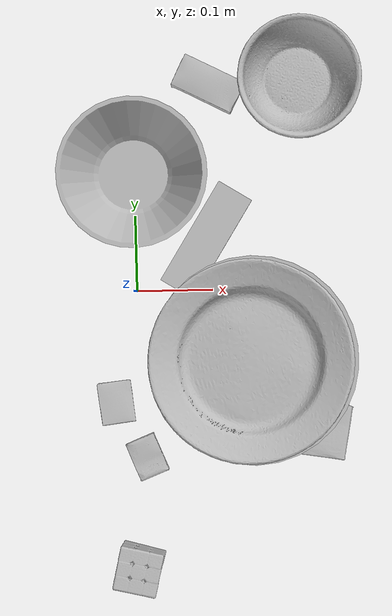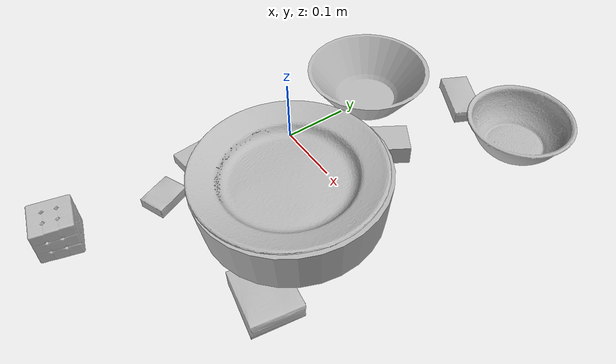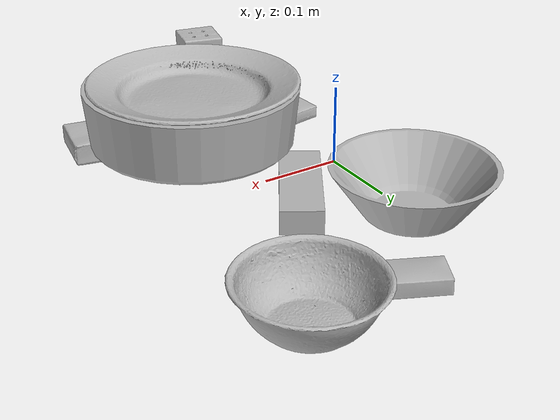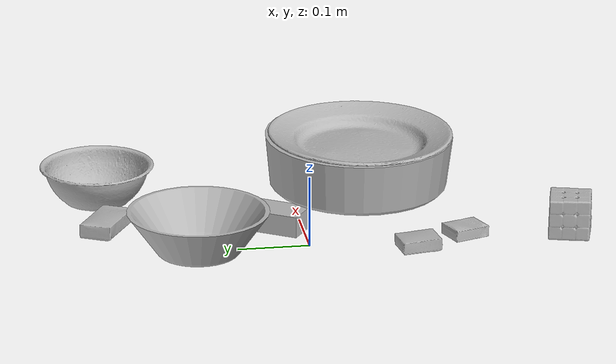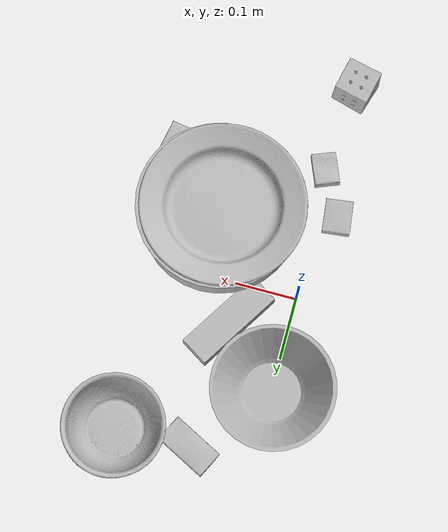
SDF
<sdf version="1.4">
  <world name="default">
    <light name="light1" type="point">
      <pose>0 0 1 0 0 0</pose>
      <diffuse>3 3 3 1</diffuse>
      <specular>3 3 3 1</specular>
    </light>
    <light name="light2" type="point">
      <pose>0 0.5 2 0 0 0</pose>
      <diffuse>1 1 1 1</diffuse>
      <specular>1 1 1 1</specular>
    </light>
    <light name="light3" type="point">
      <pose>0 0.5 2 0 0 0</pose>
      <diffuse>3 3 3 1</diffuse>
      <specular>3 3 3 1</specular>
    </light>
    <scene>
      <ambient>0.7 0.7 0.7</ambient>
    </scene>
    <model name="box1">
      <link name="link_box1">
        <collision name="default">
          <geometry>
            <mesh>
              <uri>model://sugar_box/collision_meshes/collision.obj</uri>
              <scale>0.5 0.5 0.5</scale>
            </mesh>
          </geometry>
          <surface>
            <friction>
              <ode>
                <mu>0.5</mu>
                <mu2>0.5</mu2>
              </ode>
            </friction>
          <contact>
        <ode>
            <max_vel>0</max_vel>
            <min_depth>0.0001</min_depth>
            <kp>1e8</kp>
        </ode>
    </contact></surface>
        </collision>
        <visual name="default">
          <geometry>
            <mesh>
              <uri>model://sugar_box/visual_meshes/visual.dae</uri>
              <scale>0.5 0.5 0.5</scale>
            </mesh>
          </geometry>
        </visual>
        <inertial>
          <mass>0.05968111753463745</mass>
          <pose>0.0005171863595023751 1.924554817378521e-05 -0.00018182402709499002 -0.00040462627153530444 0.0010506635220302928 0.002615378323275012</pose>
          <inertia>
            <ixx>1.2431535e-05</ixx>
            <iyy>4.0181283e-05</iyy>
            <izz>4.8101785e-05</izz>
            <ixy>0</ixy>
            <ixz>0</ixz>
            <iyz>0</iyz>
          </inertia>
        </inertial>
      </link>
      <pose>0.10023710131645203 0.27075478434562683 0.01139929797500372 0.0007754257917177019 -0.023433279377921636 2.6705569909273614</pose>
    </model>
    <model name="box11">
      <link name="link_box11">
        <collision name="default">
          <geometry>
            <mesh>
              <uri>model://cracker_box/collision_meshes/collision.obj</uri>
              <scale>0.25 0.25 0.25</scale>
            </mesh>
          </geometry>
          <surface>
            <friction>
              <ode>
                <mu>0.5</mu>
                <mu2>0.5</mu2>
              </ode>
            </friction>
          <contact>
        <ode>
            <max_vel>0</max_vel>
            <min_depth>0.0001</min_depth>
            <kp>1e8</kp>
        </ode>
    </contact></surface>
        </collision>
        <visual name="default">
          <geometry>
            <mesh>
              <uri>model://cracker_box/visual_meshes/visual.dae</uri>
              <scale>0.25 0.25 0.25</scale>
            </mesh>
          </geometry>
        </visual>
        <inertial>
          <mass>0.04741516709327698</mass>
          <pose>0.0002366035187151283 6.358561950037256e-05 -0.0004257383698131889 -0.00031620780351981393 -0.01110649053153066 0.0025467950031323855</pose>
          <inertia>
            <ixx>7.537689e-06</ixx>
            <iyy>1.2446206e-05</iyy>
            <izz>1.7761875e-05</izz>
            <ixy>0</ixy>
            <ixz>0</ixz>
            <iyz>0</iyz>
          </inertia>
        </inertial>
      </link>
      <pose>0.008268460631370544 -0.21834540367126465 0.009120449423789978 -0.011787978072303834 -0.0073671384364641405 1.9520299605262148</pose>
    </model>
    <model name="box2">
      <link name="link_box2">
        <collision name="default">
          <geometry>
            <mesh>
              <uri>model://jenga/collision_meshes/collision.obj</uri>
              <scale>1.0 1.0 1.0</scale>
            </mesh>
          </geometry>
          <surface>
            <friction>
              <ode>
                <mu>0.5</mu>
                <mu2>0.5</mu2>
              </ode>
            </friction>
          <contact>
        <ode>
            <max_vel>0</max_vel>
            <min_depth>0.0001</min_depth>
            <kp>1e8</kp>
        </ode>
    </contact></surface>
        </collision>
        <visual name="default">
          <geometry>
            <mesh>
              <uri>model://jenga/visual_meshes/visual.dae</uri>
              <scale>1.0 1.0 1.0</scale>
            </mesh>
          </geometry>
        </visual>
        <inertial>
          <mass>0.17569443583488464</mass>
          <pose>-2.502855807051674e-07 -0.00010250010382151231 -4.0923401684267446e-05 0.0 -7.342153480750062e-07 0.0</pose>
          <inertia>
            <ixx>4.8618913e-05</ixx>
            <iyy>0.00032944046</iyy>
            <izz>0.0003517057</izz>
            <ixy>0</ixy>
            <ixz>0</ixz>
            <iyz>0</iyz>
          </inertia>
        </inertial>
      </link>
      <pose>0.09284123033285141 0.06482808291912079 0.015020977705717087 -0.000646969003845926 4.834223334014954e-05 -2.1290560235196545</pose>
    </model>
    <model name="box21">
      <link name="link_box21">
        <collision name="default">
          <geometry>
            <mesh>
              <uri>model://rubiks_cube/collision_meshes/collision.obj</uri>
              <scale>1.0 1.0 1.0</scale>
            </mesh>
          </geometry>
          <surface>
            <friction>
              <ode>
                <mu>0.5</mu>
                <mu2>0.5</mu2>
              </ode>
            </friction>
          <contact>
        <ode>
            <max_vel>0</max_vel>
            <min_depth>0.0001</min_depth>
            <kp>1e8</kp>
        </ode>
    </contact></surface>
        </collision>
        <visual name="default">
          <geometry>
            <mesh>
              <uri>model://rubiks_cube/visual_meshes/visual.dae</uri>
              <scale>1.0 1.0 1.0</scale>
            </mesh>
          </geometry>
        </visual>
        <inertial>
          <mass>0.16427944600582123</mass>
          <pose>2.6721041649580002e-05 5.2569666877388954e-05 -7.2643156272533815e-06 -0.05467299197426534 -0.0981400693449792 -0.034455479534688374</pose>
          <inertia>
            <ixx>9.0775415e-05</ixx>
            <iyy>9.0352085e-05</iyy>
            <izz>9.152764e-05</izz>
            <ixy>0</ixy>
            <ixz>0</ixz>
            <iyz>0</iyz>
          </inertia>
        </inertial>
      </link>
      <pose>-0.005741917993873358 -0.36317262053489685 0.028678949922323227 -4.851249471580872e-06 -1.2259310738441881e-06 -1.8128700967925828</pose>
    </model>
    <model name="box3">
      <link name="link_box3">
        <collision name="default">
          <geometry>
            <mesh>
              <uri>model://gelatin_box/collision_meshes/collision.obj</uri>
              <scale>1.0 1.0 1.0</scale>
            </mesh>
          </geometry>
          <surface>
            <friction>
              <ode>
                <mu>0.5</mu>
                <mu2>0.5</mu2>
              </ode>
            </friction>
          <contact>
        <ode>
            <max_vel>0</max_vel>
            <min_depth>0.0001</min_depth>
            <kp>1e8</kp>
        </ode>
    </contact></surface>
        </collision>
        <visual name="default">
          <geometry>
            <mesh>
              <uri>model://gelatin_box/visual_meshes/visual.dae</uri>
              <scale>1.0 1.0 1.0</scale>
            </mesh>
          </geometry>
        </visual>
        <inertial>
          <mass>0.21197354793548584</mass>
          <pose>0.0004319618456065655 0.00011156872642459348 -0.0003640321083366871 -0.0010503719594585892 -0.004755818227500045 0.016440553882781303</pose>
          <inertia>
            <ixx>0.00014963602</ixx>
            <iyy>0.00010688423</iyy>
            <izz>0.00022777937</izz>
            <ixy>0</ixy>
            <ixz>0</ixz>
            <iyz>0</iyz>
          </inertia>
        </inertial>
      </link>
      <pose>0.2304500937461853 -0.18550750613212585 0.015296696685254574 -0.0022109535094547803 0.0040533186793759324 1.3868192177661829</pose>
    </model>
    <model name="box31">
      <link name="link_box31">
        <collision name="default">
          <geometry>
            <mesh>
              <uri>model://pudding_box/collision_meshes/collision.obj</uri>
              <scale>0.5 0.5 0.5</scale>
            </mesh>
          </geometry>
          <surface>
            <friction>
              <ode>
                <mu>0.5</mu>
                <mu2>0.5</mu2>
              </ode>
            </friction>
          <contact>
        <ode>
            <max_vel>0</max_vel>
            <min_depth>0.0001</min_depth>
            <kp>1e8</kp>
        </ode>
    </contact></surface>
        </collision>
        <visual name="default">
          <geometry>
            <mesh>
              <uri>model://pudding_box/visual_meshes/visual.dae</uri>
              <scale>0.5 0.5 0.5</scale>
            </mesh>
          </geometry>
        </visual>
        <inertial>
          <mass>0.056796859949827194</mass>
          <pose>0.00024474109522998333 0.0004033942532259971 -0.0002594413817860186 0.005213102251005844 -0.00660379641961884 0.02007983447872704</pose>
          <inertia>
            <ixx>1.605148e-05</ixx>
            <iyy>1.0799551e-05</iyy>
            <izz>2.3704206e-05</izz>
            <ixy>0</ixy>
            <ixz>0</ixz>
            <iyz>0</iyz>
          </inertia>
        </inertial>
      </link>
      <pose>-0.030496535822749138 -0.14556248486042023 0.009862903505563736 0.02234849198407713 -0.011391779582055079 -3.0248725766888036</pose>
    </model>
    <model name="plate1">
      <link name="link_plate1">
        <collision name="default">
          <geometry>
            <mesh>
              <uri>model://pan_tefal/collision_meshes/collision.obj</uri>
              <scale>1.0 1.0 1.0</scale>
            </mesh>
          </geometry>
          <surface>
            <friction>
              <ode>
                <mu>0.5</mu>
                <mu2>0.5</mu2>
              </ode>
            </friction>
          <contact>
        <ode>
            <max_vel>0</max_vel>
            <min_depth>0.0001</min_depth>
            <kp>1e8</kp>
        </ode>
    </contact></surface>
        </collision>
        <visual name="default">
          <geometry>
            <mesh>
              <uri>model://pan_tefal/visual_meshes/visual.dae</uri>
              <scale>1.0 1.0 1.0</scale>
            </mesh>
          </geometry>
        </visual>
        <inertial>
          <mass>1.4752264022827148</mass>
          <pose>-0.0001800210156943649 3.278951771790162e-05 -0.008514936082065105 0.0008190241607511121 -0.0003301478392365544 -0.33184922825406304</pose>
          <inertia>
            <ixx>0.010183416</ixx>
            <iyy>0.01024907</iyy>
            <izz>0.018745707</izz>
            <ixy>0</ixy>
            <ixz>0</ixz>
            <iyz>0</iyz>
          </inertia>
        </inertial>
      </link>
      <pose>0.14968319237232208 -0.09096554666757584 0.06778005510568619 0.019718269642441895 0.010728171644835109 -1.3538756151264844</pose>
    </model>
    <model name="bowl1">
      <link name="link_bowl1">
        <collision name="default">
          <geometry>
            <mesh>
              <uri>model://bowl/collision_meshes/collision.obj</uri>
              <scale>1.0 1.0 1.0</scale>
            </mesh>
          </geometry>
          <surface>
            <friction>
              <ode>
                <mu>0.5</mu>
                <mu2>0.5</mu2>
              </ode>
            </friction>
          <contact>
        <ode>
            <max_vel>0</max_vel>
            <min_depth>0.0001</min_depth>
            <kp>1e8</kp>
        </ode>
    </contact></surface>
        </collision>
        <visual name="default">
          <geometry>
            <mesh>
              <uri>model://bowl/visual_meshes/visual.dae</uri>
              <scale>1.0 1.0 1.0</scale>
            </mesh>
          </geometry>
        </visual>
        <inertial>
          <mass>0.13335108757019043</mass>
          <pose>0.00020445126574486494 -0.0010302079608663917 -0.0008042646804824471 -0.01576397865263616 0.014546905041115984 0.7140477796865206</pose>
          <inertia>
            <ixx>0.000306318</ixx>
            <iyy>0.00029947367</iyy>
            <izz>0.00051533245</izz>
            <ixy>0</ixy>
            <ixz>0</ixz>
            <iyz>0</iyz>
          </inertia>
        </inertial>
      </link>
      <pose>0.21883849799633026 0.2730286419391632 0.027779994532465935 5.876208783450754e-09 6.212523507595538e-08 0.21099898535551784</pose>
    </model>
    <model name="plate2">
      <link name="link_plate2">
        <collision name="default">
          <geometry>
            <mesh>
              <uri>model://plate/collision_meshes/collision.obj</uri>
              <scale>1.0 1.0 1.0</scale>
            </mesh>
          </geometry>
          <surface>
            <friction>
              <ode>
                <mu>0.5</mu>
                <mu2>0.5</mu2>
              </ode>
            </friction>
          <contact>
        <ode>
            <max_vel>0</max_vel>
            <min_depth>0.0001</min_depth>
            <kp>1e8</kp>
        </ode>
    </contact></surface>
        </collision>
        <visual name="default">
          <geometry>
            <mesh>
              <uri>model://plate/visual_meshes/visual.dae</uri>
              <scale>1.0 1.0 1.0</scale>
            </mesh>
          </geometry>
        </visual>
        <inertial>
          <mass>0.1753290891647339</mass>
          <pose>-0.0006044620531611145 0.0002782598021440208 -0.0010561987292021513 0.0022188066246853514 -0.003225466953145419 0.45260347799947726</pose>
          <inertia>
            <ixx>0.00082019315</ixx>
            <iyy>0.00081234827</iyy>
            <izz>0.0016041752</izz>
            <ixy>0</ixy>
            <ixz>0</ixz>
            <iyz>0</iyz>
          </inertia>
        </inertial>
      </link>
      <pose>0.1458078771829605 -0.09287064522504807 0.09890662133693695 -0.020972754866153305 -0.0014875792010968557 2.2343627163713116</pose>
    </model>
    <model name="bowl2">
      <link name="link_bowl2">
        <collision name="default">
          <geometry>
            <mesh>
              <uri>model://bowl_a/collision_meshes/collision.obj</uri>
              <scale>1.0 1.0 1.0</scale>
            </mesh>
          </geometry>
          <surface>
            <friction>
              <ode>
                <mu>0.5</mu>
                <mu2>0.5</mu2>
              </ode>
            </friction>
          <contact>
        <ode>
            <max_vel>0</max_vel>
            <min_depth>0.0001</min_depth>
            <kp>1e8</kp>
        </ode>
    </contact></surface>
        </collision>
        <visual name="default">
          <geometry>
            <mesh>
              <uri>model://bowl_a/visual_meshes/visual.dae</uri>
              <scale>1.0 1.0 1.0</scale>
            </mesh>
          </geometry>
        </visual>
        <inertial>
          <mass>0.4813200831413269</mass>
          <pose>0.0002786751138046384 4.731064836960286e-05 -0.0013765294570475817 -0.0009805320964546374 -0.0010938264681851768 -0.19124047933057892</pose>
          <inertia>
            <ixx>0.0013703406</ixx>
            <iyy>0.0013787533</iyy>
            <izz>0.0024372027</izz>
            <ixy>0</ixy>
            <ixz>0</ixz>
            <iyz>0</iyz>
          </inertia>
        </inertial>
      </link>
      <pose>-0.0012713844189420342 0.15391995012760162 0.030383002012968063 2.1376113016031808e-08 3.5626665336091347e-09 2.660740312807037</pose>
    </model>
  <physics type="ode">
      <max_contacts>50</max_contacts>
      <ode>
        <solver>
          <type>quick</type>
          <iters>75</iters>
        </solver>
        <constraints>
          <contact_max_correcting_vel>0</contact_max_correcting_vel>
          <contact_surface_layer>0</contact_surface_layer>
        </constraints>
      </ode>
    </physics></world>
</sdf>
